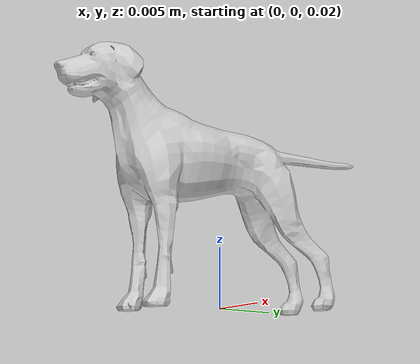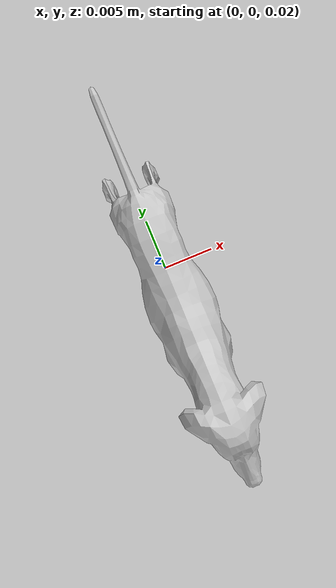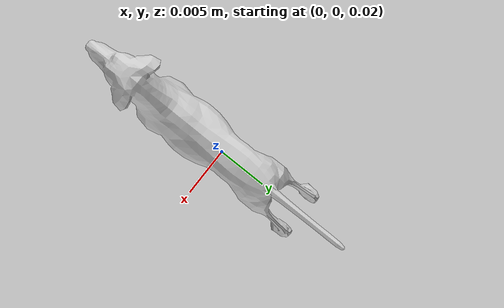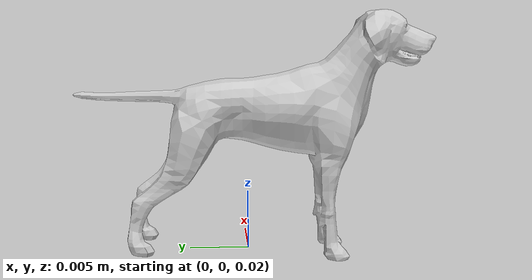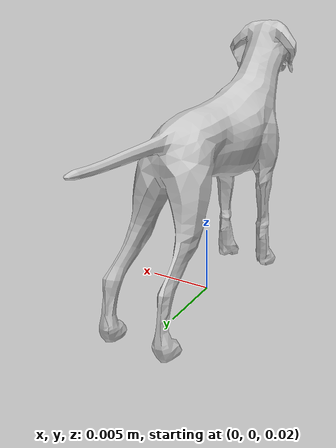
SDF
<?xml version="1.0" ?>
<sdf version="1.5">
  <model name="dog">
    <link name="link">
      <inertial>
        <pose>0 -0.1 0.95 0 0 0</pose>
        <mass>80.0</mass>
        <inertia>
          <ixx>24.88</ixx>
          <ixy>0</ixy>
          <ixz>0</ixz>
          <iyy>25.73</iyy>
          <iyz>0</iyz>
          <izz>2.48</izz>
        </inertia>
      </inertial>

      <collision name="dogi">
        <pose>0 0 0.02 0.04 0 0</pose>
        <geometry>
          <mesh>
            <uri>model://dog/meshes/dog.dae</uri>
            <scale>0.02 0.02 0.02</scale>
          </mesh>
        </geometry>
      </collision>

      <visual name="visual">
        <pose>0 0 0.02 0.04 0 0</pose>
        <geometry>
          <mesh>
            <uri>model://dog/meshes/dog.dae</uri>
            <scale>0.02 0.02 0.02</scale>
          </mesh>
        </geometry>
      </visual>
    </link>
  </model>
</sdf>
